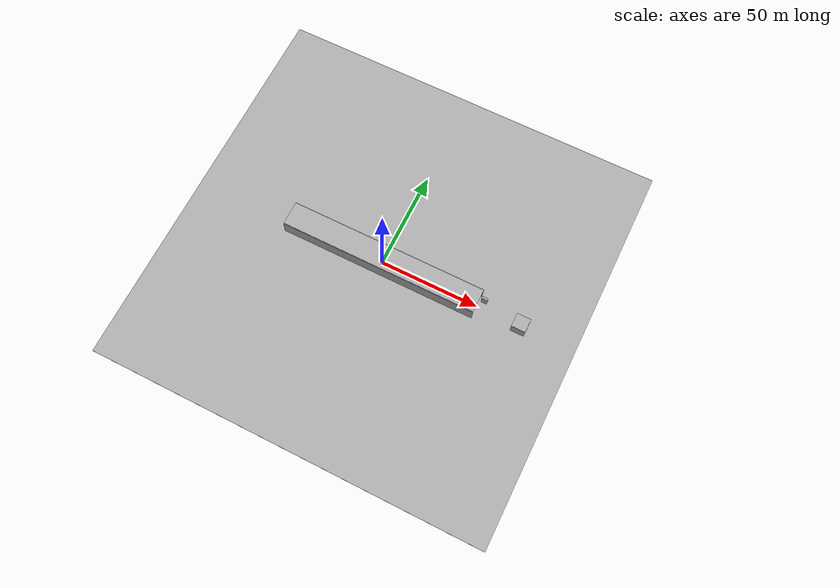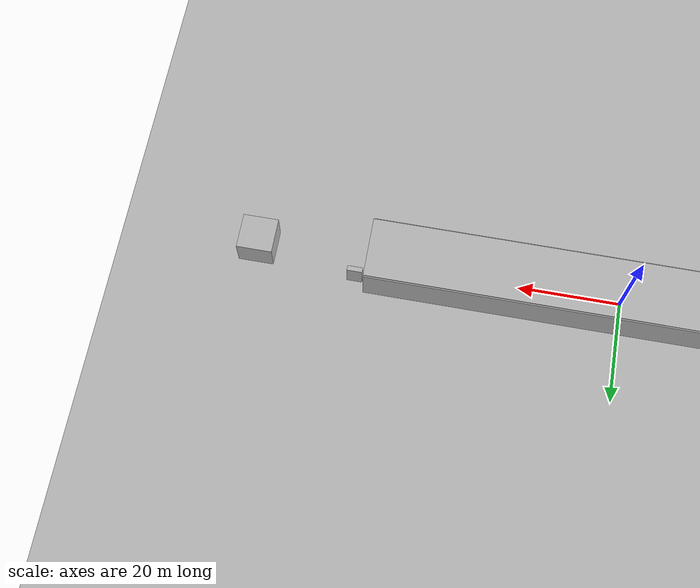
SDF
<?xml version="1.0"?>
<sdf version="1.9">
  <world name="navigate_x_subterranean">
    <gravity>0 0 -9.81</gravity>
    <scene><ambient>0.02 0.02 0.02 1</ambient><background>0.005 0.005 0.008 1</background><shadows>true</shadows></scene>
    <light name="ceiling_light" type="point"><pose>0 0 7 0 0 0</pose><diffuse>0.25 0.25 0.25 1</diffuse><attenuation><range>18</range></attenuation></light>
    <model name="floor"><static>true</static><link name="link"><collision name="collision"><geometry><box><size>200 200 0.2</size></box></geometry></collision><visual name="visual"><geometry><box><size>200 200 0.2</size></box></geometry></visual></link><pose>0 0 -0.1 0 0 0</pose></model>
    <model name="left_wall"><static>true</static><link name="link"><collision name="collision"><geometry><box><size>100 0.5 8</size></box></geometry></collision><visual name="visual"><geometry><box><size>100 0.5 8</size></box></geometry></visual></link><pose>0 -6 4 0 0 0</pose></model>
    <model name="right_wall"><static>true</static><link name="link"><collision name="collision"><geometry><box><size>100 0.5 8</size></box></geometry></collision><visual name="visual"><geometry><box><size>100 0.5 8</size></box></geometry></visual></link><pose>0 6 4 0 0 0</pose></model>
    <model name="ceiling"><static>true</static><link name="link"><collision name="collision"><geometry><box><size>100 12 0.5</size></box></geometry></collision><visual name="visual"><geometry><box><size>100 12 0.5</size></box></geometry></visual></link><pose>0 0 8 0 0 0</pose></model>
    <model name="rock_01"><static>true</static><link name="link"><collision name="collision"><geometry><sphere><radius>1.4</radius></sphere></geometry></collision><visual name="visual"><geometry><sphere><radius>1.4</radius></sphere></geometry></visual></link><pose>12 -2.5 1.4 0 0 0</pose></model>
    <model name="rock_02"><static>true</static><link name="link"><collision name="collision"><geometry><sphere><radius>1.8</radius></sphere></geometry></collision><visual name="visual"><geometry><sphere><radius>1.8</radius></sphere></geometry></visual></link><pose>25 2 1.8 0 0 0</pose></model>
    <model name="rock_03"><static>true</static><link name="link"><collision name="collision"><geometry><box><size>4 2 5</size></box></geometry></collision><visual name="visual"><geometry><box><size>4 2 5</size></box></geometry></visual></link><pose>38 -1.5 2.5 0.1 0.2 0</pose></model>
    <model name="narrow_gate"><static>true</static><link name="link"><collision name="collision"><geometry><box><size>3 1 5</size></box></geometry></collision><visual name="visual"><geometry><box><size>3 1 5</size></box></geometry></visual></link><pose>52 3.7 2.5 0 0 0</pose></model>
    <model name="dead_end_block"><static>true</static><link name="link"><collision name="collision"><geometry><box><size>7 7 6</size></box></geometry></collision><visual name="visual"><geometry><box><size>7 7 6</size></box></geometry></visual></link><pose>72 0 3 0 0 0</pose></model>
  </world>
</sdf>
